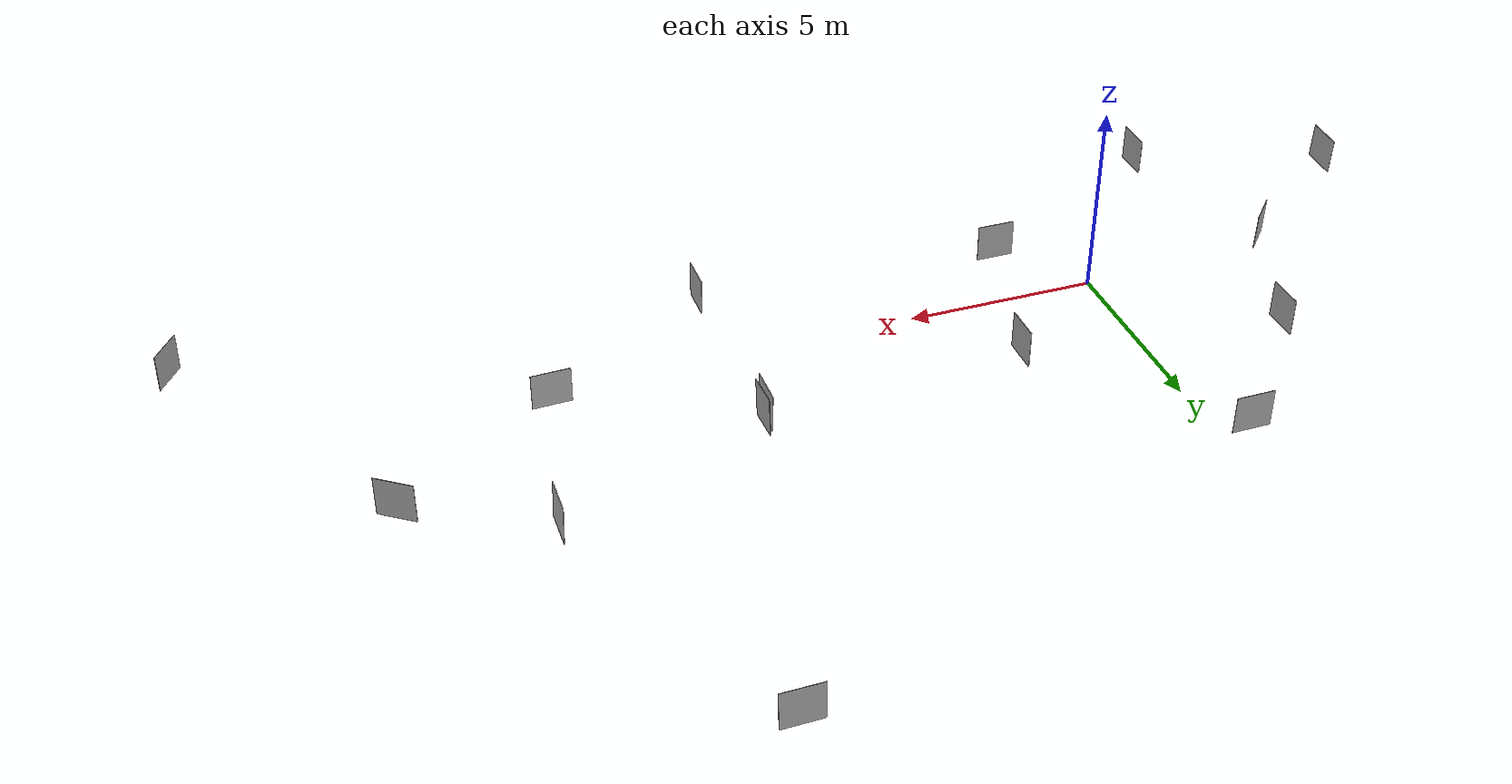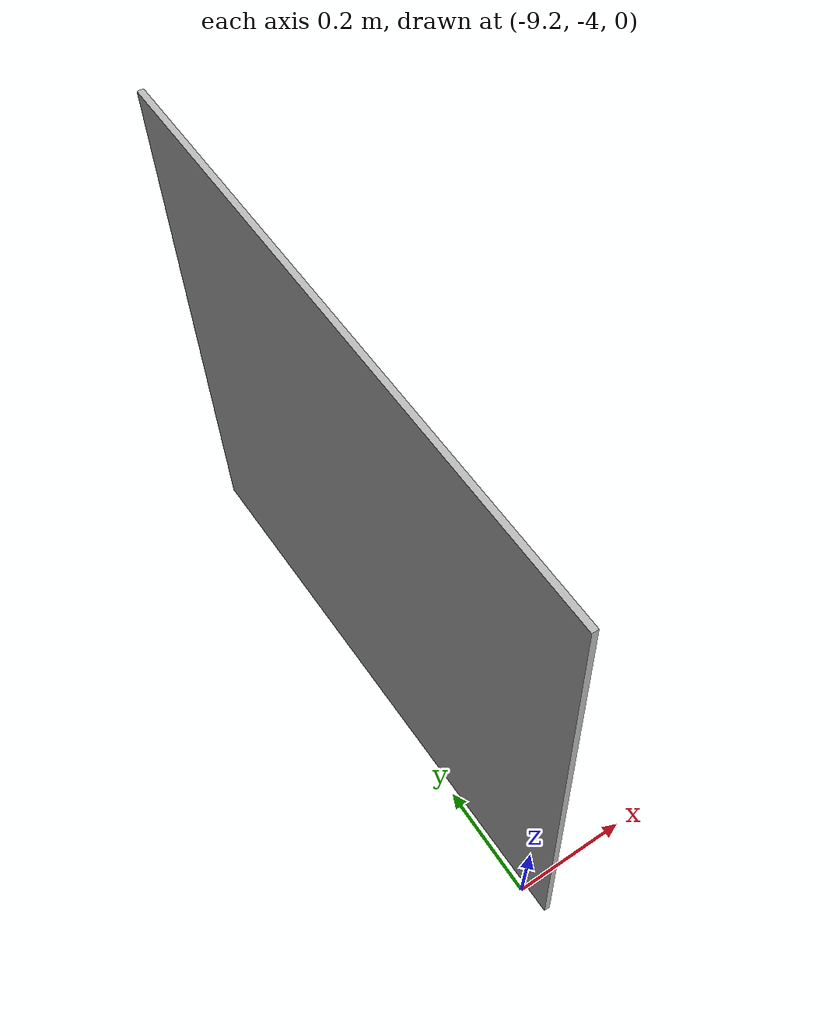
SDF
<sdf version="1.6">
 <world name="default">
  <light name="sun" type="directional">
   <pose>0 0 10 0 -0 0</pose>
   <diffuse>1 1 1 1</diffuse>
   <specular>0.2 0.2 0.2 1</specular>
   <attenuation>
    <range>1000</range>
    <constant>0.9</constant>
    <linear>0.01</linear>
    <quadratic>0.001</quadratic>
   </attenuation>
   <direction>-0.5 0.5 -1</direction>
  </light>
  <physics name="default_physics" default="0" type="ode">
   <max_step_size>0.001</max_step_size>
   <real_time_factor>1</real_time_factor>
   <real_time_update_rate>1000</real_time_update_rate>
  </physics>
  <scene>
   <ambient>1 1 1 1</ambient>
   <background>1 1 1 1</background>
   <shadows>1</shadows>
   <sky><clouds><speed>12</speed></clouds></sky>
  </scene>
  <spherical_coordinates>
   <surface_model>EARTH_WGS84</surface_model>
   <latitude_deg>43.5007</latitude_deg>
   <longitude_deg>-80.5468</longitude_deg>
   <elevation>329</elevation>
   <heading_deg>0</heading_deg>
  </spherical_coordinates>
  <gravity>0 0 -9.8</gravity>
  <magnetic_field>6e-06 2.3e-05 -4.2e-05</magnetic_field>
  <atmosphere type="adiabatic"/>
  <audio><device>default</device></audio>
  <model name="Apriltag36_11_00001">
   <pose>-3.78979 3.27337 0.5 -1.57089 -0.000108 1.5708</pose>
   <link name="main">
    <pose>0 0 0 3.14159 3e-06 -1.57089</pose>
    <visual name="main_Visual">
     <geometry><box><size>1 1 0.01</size></box></geometry>
     <material>
      <script>
       <uri>model://Apriltag36_11_00001/materials/scripts</uri>
       <uri>model://Apriltag36_11_00001/materials/textures</uri>
       <name>Apriltag36_11_00001</name>
      </script>
     </material>
    </visual>
   </link>
   <static>1</static>
  </model>
  <model name="Apriltag36_11_00002">
   <pose>-0.849398 6.84137 0.5 -1.57089 0.007091 9.6e-05</pose>
   <link name="main">
    <pose>0 0 0 3.14159 3e-06 -1.57089</pose>
    <visual name="main_Visual">
     <geometry><box><size>1 1 0.01</size></box></geometry>
     <material>
      <script>
       <uri>model://Apriltag36_11_00002/materials/scripts</uri>
       <uri>model://Apriltag36_11_00002/materials/textures</uri>
       <name>Apriltag36_11_00002</name>
      </script>
     </material>
    </visual>
   </link>
   <static>1</static>
  </model>
  <model name="Apriltag36_11_00003">
   <pose>-9.18982 -3.53098 0.5 -1.57089 0.044528 1.57079</pose>
   <link name="main">
    <pose>0 0 0 3.14159 3e-06 -1.57089</pose>
    <visual name="main_Visual">
     <geometry><box><size>1 1 0.01</size></box></geometry>
     <material>
      <script>
       <uri>model://Apriltag36_11_00003/materials/scripts</uri>
       <uri>model://Apriltag36_11_00003/materials/textures</uri>
       <name>Apriltag36_11_00003</name>
      </script>
     </material>
    </visual>
   </link>
   <static>1</static>
  </model>
  <model name="Apriltag36_11_00004">
   <pose>-3.98141 -5.25457 0.5 1.57089 -9.6e-05 -1.5708</pose>
   <link name="main">
    <pose>0 0 0 3.14159 3e-06 -1.57089</pose>
    <visual name="main_Visual">
     <geometry><box><size>1 1 0.01</size></box></geometry>
     <material>
      <script>
       <uri>model://Apriltag36_11_00004/materials/scripts</uri>
       <uri>model://Apriltag36_11_00004/materials/textures</uri>
       <name>Apriltag36_11_00004</name>
      </script>
     </material>
    </visual>
   </link>
   <static>1</static>
  </model>
  <model name="Apriltag36_11_00005">
   <pose>3.06215 2.36003 0.5 -1.57374 -9.6e-05 -1.5708</pose>
   <link name="main">
    <pose>0 0 0 3.14159 3e-06 -1.57089</pose>
    <visual name="main_Visual">
     <geometry><box><size>1 1 0.01</size></box></geometry>
     <material>
      <script>
       <uri>model://Apriltag36_11_00005/materials/scripts</uri>
       <uri>model://Apriltag36_11_00005/materials/textures</uri>
       <name>Apriltag36_11_00005</name>
      </script>
     </material>
    </visual>
   </link>
   <static>1</static>
  </model>
  <model name="Apriltag36_11_00006">
   <pose>1.78521 -2.0538 0.5 -1.58163 -9.6e-05 -3.1415</pose>
   <link name="main">
    <pose>0 0 0 3.14159 3e-06 -1.57089</pose>
    <visual name="main_Visual">
     <geometry><box><size>1 1 0.01</size></box></geometry>
     <material>
      <script>
       <uri>model://Apriltag36_11_00006/materials/scripts</uri>
       <uri>model://Apriltag36_11_00006/materials/textures</uri>
       <name>Apriltag36_11_00006</name>
      </script>
     </material>
    </visual>
   </link>
   <static>1</static>
  </model>
  <model name="Apriltag36_11_00007">
   <pose>23.1295 -3.57551 0.5 -1.51996 -9.6e-05 -2.13592</pose>
   <link name="main">
    <pose>0 0 0 3.14159 3e-06 -1.57089</pose>
    <visual name="main_Visual">
     <geometry><box><size>1 1 0.01</size></box></geometry>
     <material>
      <script>
       <uri>model://Apriltag36_11_00007/materials/scripts</uri>
       <uri>model://Apriltag36_11_00007/materials/textures</uri>
       <name>Apriltag36_11_00007</name>
      </script>
     </material>
    </visual>
   </link>
   <static>1</static>
  </model>
  <model name="Apriltag36_11_00008">
   <pose>15.454 5.0377 0.5 -1.52557 -9.6e-05 -1.5708</pose>
   <link name="main">
    <pose>0 0 0 3.14159 3e-06 -1.57089</pose>
    <visual name="main_Visual">
     <geometry><box><size>1 1 0.01</size></box></geometry>
     <material>
      <script>
       <uri>model://Apriltag36_11_00008/materials/scripts</uri>
       <uri>model://Apriltag36_11_00008/materials/textures</uri>
       <name>Apriltag36_11_00008</name>
      </script>
     </material>
    </visual>
   </link>
   <static>1</static>
  </model>
  <model name="Apriltag36_11_00009">
   <pose>9.99214 2.88366 0.5 -1.57089 -0.082825 1.5708</pose>
   <link name="main">
    <pose>0 0 0 3.14159 3e-06 -1.57089</pose>
    <visual name="main_Visual">
     <geometry><box><size>1 1 0.01</size></box></geometry>
     <material>
      <script>
       <uri>model://Apriltag36_11_00009/materials/scripts</uri>
       <uri>model://Apriltag36_11_00009/materials/textures</uri>
       <name>Apriltag36_11_00009</name>
      </script>
     </material>
    </visual>
   </link>
   <static>1</static>
  </model>
  <model name="Apriltag36_11_00010">
   <pose>14.5366 0.523454 0.5 -1.50703 -9.6e-05 -3.10019</pose>
   <link name="main">
    <pose>0 0 0 3.14159 3e-06 -1.57089</pose>
    <visual name="main_Visual">
     <geometry><box><size>1 1 0.01</size></box></geometry>
     <material>
      <script>
       <uri>model://Apriltag36_11_00010/materials/scripts</uri>
       <uri>model://Apriltag36_11_00010/materials/textures</uri>
       <name>Apriltag36_11_00010</name>
      </script>
     </material>
    </visual>
   </link>
   <static>1</static>
  </model>
  <model name="Apriltag36_11_00011">
   <pose>-5.33605 -0.461352 0.5 -1.55087 0.000342 -2.31707</pose>
   <link name="main">
    <pose>0 0 0 3.14159 3e-06 -1.57089</pose>
    <visual name="main_Visual">
     <geometry><box><size>1 1 0.01</size></box></geometry>
     <material>
      <script>
       <uri>model://Apriltag36_11_00011/materials/scripts</uri>
       <uri>model://Apriltag36_11_00011/materials/textures</uri>
       <name>Apriltag36_11_00011</name>
      </script>
     </material>
    </visual>
   </link>
   <static>1</static>
  </model>
  <model name="Apriltag36_11_00012">
   <pose>9.87005 2.7314 0.5 -1.55339 -9.6e-05 -1.5708</pose>
   <link name="main">
    <pose>0 0 0 3.14159 3e-06 -1.57089</pose>
    <visual name="main_Visual">
     <geometry><box><size>1 1 0.01</size></box></geometry>
     <material>
      <script>
       <uri>model://Apriltag36_11_00012/materials/scripts</uri>
       <uri>model://Apriltag36_11_00012/materials/textures</uri>
       <name>Apriltag36_11_00012</name>
      </script>
     </material>
    </visual>
   </link>
   <static>1</static>
  </model>
  <model name="Apriltag36_11_00013">
   <pose>10.0106 -2.49795 0.499997 -1.56468 -9.6e-05 -1.5708</pose>
   <link name="main">
    <pose>0 0 0 3.14159 3e-06 -1.57089</pose>
    <visual name="main_Visual">
     <geometry><box><size>1 1 0.01</size></box></geometry>
     <material>
      <script>
       <uri>model://Apriltag36_11_00013/materials/scripts</uri>
       <uri>model://Apriltag36_11_00013/materials/textures</uri>
       <name>Apriltag36_11_00013</name>
      </script>
     </material>
    </visual>
   </link>
   <static>1</static>
  </model>
  <model name="Apriltag36_11_00014">
   <pose>12.3202 12.2389 0.5 -1.57089 0.011048 9.5e-05</pose>
   <link name="main">
    <pose>0 0 0 3.14159 3e-06 -1.57089</pose>
    <visual name="main_Visual">
     <geometry><box><size>1 1 0.01</size></box></geometry>
     <material>
      <script>
       <uri>model://Apriltag36_11_00014/materials/scripts</uri>
       <uri>model://Apriltag36_11_00014/materials/textures</uri>
       <name>Apriltag36_11_00014</name>
      </script>
     </material>
    </visual>
   </link>
   <static>1</static>
  </model>
  <model name="Apriltag36_11_00015">
   <pose>18.7669 3.41792 0.5 -1.53727 -9.6e-05 -0.62198</pose>
   <link name="main">
    <pose>0 0 0 3.14159 3e-06 -1.57089</pose>
    <visual name="main_Visual">
     <geometry><box><size>1 1 0.01</size></box></geometry>
     <material>
      <script>
       <uri>model://Apriltag36_11_00015/materials/scripts</uri>
       <uri>model://Apriltag36_11_00015/materials/textures</uri>
       <name>Apriltag36_11_00015</name>
      </script>
     </material>
    </visual>
   </link>
   <static>1</static>
  </model>
 </world>
</sdf>
